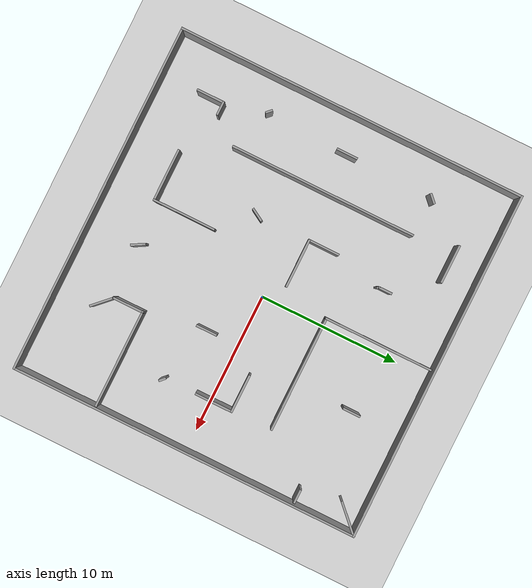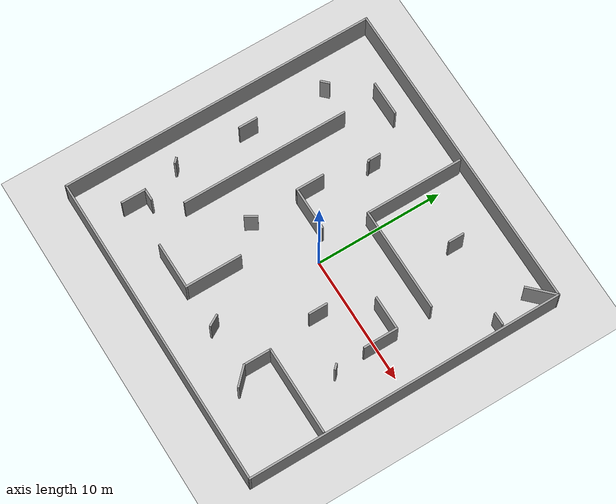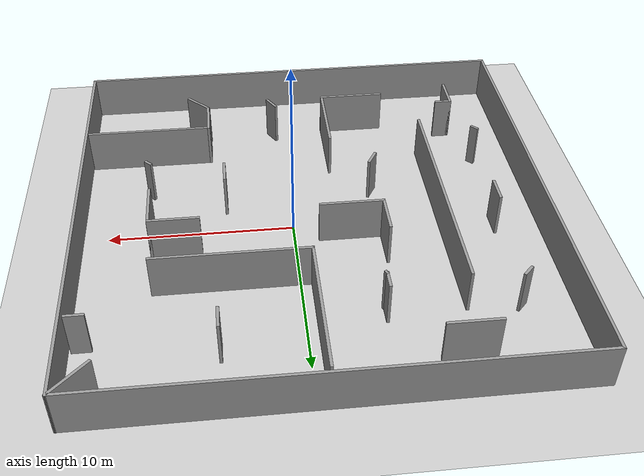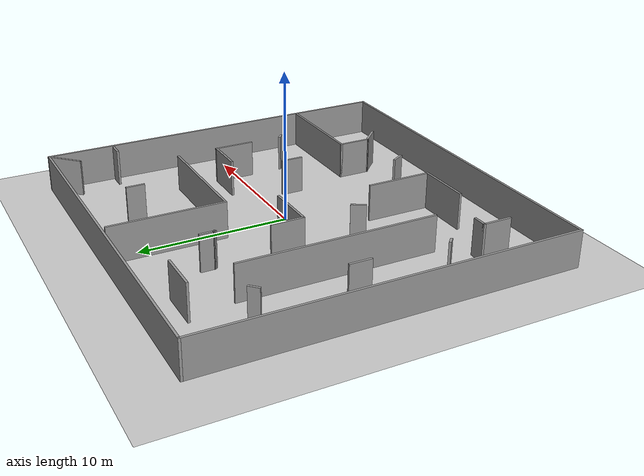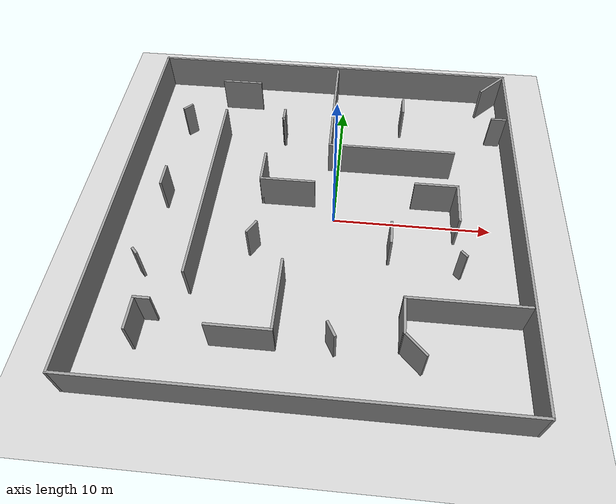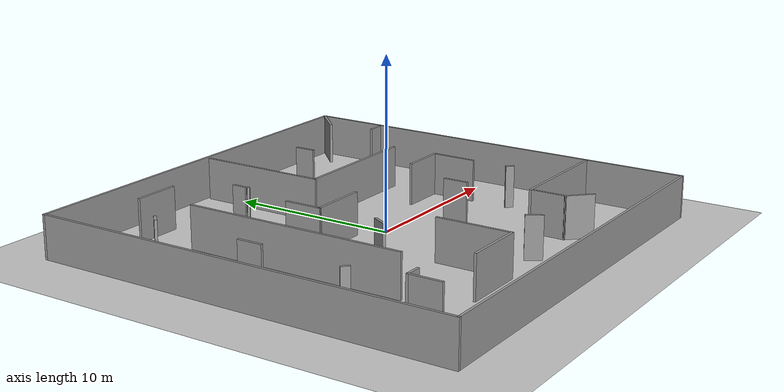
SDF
<sdf version="1.7">
 <world name="default">
  <light name="sun" type="directional">
   <pose>0 0 10 0 -0 0</pose>
   <diffuse>0.8 0.8 0.8 1</diffuse>
   <specular>0.2 0.2 0.2 1</specular>
   <attenuation>
    <range>1000</range>
    <constant>0.9</constant>
    <linear>0.01</linear>
    <quadratic>0.001</quadratic>
   </attenuation>
   <direction>-0.5 0.1 -0.9</direction>
   <spot><inner_angle>0</inner_angle><outer_angle>0</outer_angle><falloff>0</falloff></spot>
  </light>
  <model name="ground_plane">
   <static>1</static>
   <link name="link">
    <collision name="collision">
     <geometry><plane><normal>0 0 1</normal><size>100 100</size></plane></geometry>
     <surface>
      <contact><collide_bitmask>65535</collide_bitmask></contact>
      <friction><ode><mu>100</mu><mu2>50</mu2></ode></friction>
     </surface>
    </collision>
    <visual name="visual">
     <cast_shadows>0</cast_shadows>
     <geometry><plane><normal>0 0 1</normal><size>100 100</size></plane></geometry>
     <material>
      <script><uri>file://media/materials/scripts/gazebo.material</uri><name>Gazebo/Grey</name></script>
     </material>
    </visual>
   </link>
  </model>
  <gravity>0 0 -9.8</gravity>
  <magnetic_field>6e-06 2.3e-05 -4.2e-05</magnetic_field>
  <atmosphere type="adiabatic"/>
  <physics type="ode">
   <max_step_size>0.001</max_step_size>
   <real_time_factor>1</real_time_factor>
   <real_time_update_rate>1000</real_time_update_rate>
  </physics>
  <scene><ambient>0.4 0.4 0.4 1</ambient><background>0.7 0.7 0.7 1</background><shadows>1</shadows></scene>
  <spherical_coordinates>
   <surface_model>EARTH_WGS84</surface_model>
   <latitude_deg>0</latitude_deg>
   <longitude_deg>0</longitude_deg>
   <elevation>0</elevation>
   <heading_deg>0</heading_deg>
  </spherical_coordinates>
  <model name="Untitled">
   <pose>-1.01418 -0.082751 0 0 -0 0</pose>
   <link name="Wall_10">
    <collision name="Wall_10_Collision">
     <geometry><box><size>13.25 0.15 2.5</size></box></geometry>
     <pose>0 0 1.25 0 -0 0</pose>
    </collision>
    <visual name="Wall_10_Visual">
     <pose>0 0 1.25 0 -0 0</pose>
     <geometry><box><size>13.25 0.15 2.5</size></box></geometry>
     <material>
      <script><uri>file://media/materials/scripts/gazebo.material</uri><name>Gazebo/Grey</name></script>
      <ambient>1 1 1 1</ambient>
     </material>
     <meta><layer>0</layer></meta>
    </visual>
    <pose>-6.99696 0.555683 0 0 -0 -1.5708</pose>
   </link>
   <link name="Wall_12">
    <collision name="Wall_12_Collision">
     <geometry><box><size>7 0.15 2.5</size></box></geometry>
     <pose>0 0 1.25 0 -0 0</pose>
    </collision>
    <visual name="Wall_12_Visual">
     <pose>0 0 1.25 0 -0 0</pose>
     <geometry><box><size>7 0.15 2.5</size></box></geometry>
     <material>
      <script><uri>file://media/materials/scripts/gazebo.material</uri><name>Gazebo/Grey</name></script>
      <ambient>1 1 1 1</ambient>
     </material>
     <meta><layer>0</layer></meta>
    </visual>
    <pose>8.8034 -6.52582 0 0 -0 0</pose>
   </link>
   <link name="Wall_14">
    <collision name="Wall_14_Collision">
     <geometry><box><size>2.25 0.15 2.5</size></box></geometry>
     <pose>0 0 1.25 0 -0 0</pose>
    </collision>
    <visual name="Wall_14_Visual">
     <pose>0 0 1.25 0 -0 0</pose>
     <geometry><box><size>2.25 0.15 2.5</size></box></geometry>
     <material>
      <script><uri>file://media/materials/scripts/gazebo.material</uri><name>Gazebo/Grey</name></script>
      <ambient>1 1 1 1</ambient>
     </material>
     <meta><layer>0</layer></meta>
    </visual>
    <pose>5.3784 -7.57582 0 0 -0 -1.5708</pose>
   </link>
   <link name="Wall_16">
    <collision name="Wall_16_Collision">
     <geometry><box><size>7.75 0.15 2.5</size></box></geometry>
     <pose>0 0 1.25 0 -0 0</pose>
    </collision>
    <visual name="Wall_16_Visual">
     <pose>0 0 1.25 0 -0 0</pose>
     <geometry><box><size>7.75 0.15 2.5</size></box></geometry>
     <material>
      <script><uri>file://media/materials/scripts/gazebo.material</uri><name>Gazebo/Grey</name></script>
      <ambient>1 1 1 1</ambient>
     </material>
     <meta><layer>0</layer></meta>
    </visual>
    <pose>0.40034 8.28374 0 0 -0 -1.5708</pose>
   </link>
   <link name="Wall_17">
    <collision name="Wall_17_Collision">
     <geometry><box><size>8.25 0.15 2.5</size></box></geometry>
     <pose>0 0 1.25 0 -0 0</pose>
    </collision>
    <visual name="Wall_17_Visual">
     <pose>0 0 1.25 0 -0 0</pose>
     <geometry><box><size>8.25 0.15 2.5</size></box></geometry>
     <material>
      <script><uri>file://media/materials/scripts/gazebo.material</uri><name>Gazebo/Grey</name></script>
      <ambient>1 1 1 1</ambient>
     </material>
     <meta><layer>0</layer></meta>
    </visual>
    <pose>4.45034 4.48374 0 0 -0 0</pose>
   </link>
   <link name="Wall_19">
    <collision name="Wall_19_Collision">
     <geometry><box><size>2.75 0.15 2.5</size></box></geometry>
     <pose>0 0 1.25 0 -0 0</pose>
    </collision>
    <visual name="Wall_19_Visual">
     <pose>0 0 1.25 0 -0 0</pose>
     <geometry><box><size>2.75 0.15 2.5</size></box></geometry>
     <material>
      <script><uri>file://media/materials/scripts/gazebo.material</uri><name>Gazebo/Grey</name></script>
      <ambient>1 1 1 1</ambient>
     </material>
     <meta><layer>0</layer></meta>
    </visual>
    <pose>-6.39482 10.1763 0 0 -0 0</pose>
   </link>
   <link name="Wall_2">
    <collision name="Wall_2_Collision">
     <geometry><box><size>25 0.15 2.5</size></box></geometry>
     <pose>0 0 1.25 0 -0 0</pose>
    </collision>
    <visual name="Wall_2_Visual">
     <pose>0 0 1.25 0 -0 0</pose>
     <geometry><box><size>25 0.15 2.5</size></box></geometry>
     <material>
      <script><uri>file://media/materials/scripts/gazebo.material</uri><name>Gazebo/Grey</name></script>
      <ambient>1 1 1 1</ambient>
     </material>
     <meta><layer>0</layer></meta>
    </visual>
    <pose>-0.015532 12.4095 0 0 -0 0</pose>
   </link>
   <link name="Wall_21">
    <collision name="Wall_21_Collision">
     <geometry><box><size>4.5 0.15 2.5</size></box></geometry>
     <pose>0 0 1.25 0 -0 0</pose>
    </collision>
    <visual name="Wall_21_Visual">
     <pose>0 0 1.25 0 -0 0</pose>
     <geometry><box><size>4.5 0.15 2.5</size></box></geometry>
     <material>
      <script><uri>file://media/materials/scripts/gazebo.material</uri><name>Gazebo/Grey</name></script>
      <ambient>1 1 1 1</ambient>
     </material>
     <meta><layer>0</layer></meta>
    </visual>
    <pose>-1.55366 -6.93292 0 0 -0 -1.5708</pose>
   </link>
   <link name="Wall_22">
    <collision name="Wall_22_Collision">
     <geometry><box><size>3.75 0.15 2.5</size></box></geometry>
     <pose>0 0 1.25 0 -0 0</pose>
    </collision>
    <visual name="Wall_22_Visual">
     <pose>0 0 1.25 0 -0 0</pose>
     <geometry><box><size>3.75 0.15 2.5</size></box></geometry>
     <material>
      <script><uri>file://media/materials/scripts/gazebo.material</uri><name>Gazebo/Grey</name></script>
      <ambient>1 1 1 1</ambient>
     </material>
     <meta><layer>0</layer></meta>
    </visual>
    <pose>-3.35366 -9.10792 0 0 -0 3.14159</pose>
   </link>
   <link name="Wall_24">
    <collision name="Wall_24_Collision">
     <geometry><box><size>1.25 0.15 2.5</size></box></geometry>
     <pose>0 0 1.25 0 -0 0</pose>
    </collision>
    <visual name="Wall_24_Visual">
     <pose>0 0 1.25 0 -0 0</pose>
     <geometry><box><size>1.25 0.15 2.5</size></box></geometry>
     <material>
      <script><uri>file://media/materials/scripts/gazebo.material</uri><name>Gazebo/Grey</name></script>
      <ambient>1 1 1 1</ambient>
     </material>
     <meta><layer>0</layer></meta>
    </visual>
    <pose>5.1923 8.69578 0 0 -0 -1.5708</pose>
   </link>
   <link name="Wall_26">
    <collision name="Wall_26_Collision">
     <geometry><box><size>2.25 0.15 2.5</size></box></geometry>
     <pose>0 0 1.25 0 -0 0</pose>
    </collision>
    <visual name="Wall_26_Visual">
     <pose>0 0 1.25 0 -0 0</pose>
     <geometry><box><size>2.25 0.15 2.5</size></box></geometry>
     <material>
      <script><uri>file://media/materials/scripts/gazebo.material</uri><name>Gazebo/Grey</name></script>
      <ambient>1 1 1 1</ambient>
     </material>
     <meta><layer>0</layer></meta>
    </visual>
    <pose>-3.69376 2.24072 0 0 -0 -1.5708</pose>
   </link>
   <link name="Wall_27">
    <collision name="Wall_27_Collision">
     <geometry><box><size>3.5 0.15 2.5</size></box></geometry>
     <pose>0 0 1.25 0 -0 0</pose>
    </collision>
    <visual name="Wall_27_Visual">
     <pose>0 0 1.25 0 -0 0</pose>
     <geometry><box><size>3.5 0.15 2.5</size></box></geometry>
     <material>
      <script><uri>file://media/materials/scripts/gazebo.material</uri><name>Gazebo/Grey</name></script>
      <ambient>1 1 1 1</ambient>
     </material>
     <meta><layer>0</layer></meta>
    </visual>
    <pose>-2.01876 1.19072 0 0 -0 0</pose>
   </link>
   <link name="Wall_29">
    <collision name="Wall_29_Collision">
     <geometry><box><size>1.5 0.15 2.5</size></box></geometry>
     <pose>0 0 1.25 0 -0 0</pose>
    </collision>
    <visual name="Wall_29_Visual">
     <pose>0 0 1.25 0 -0 0</pose>
     <geometry><box><size>1.5 0.15 2.5</size></box></geometry>
     <material>
      <script><uri>file://media/materials/scripts/gazebo.material</uri><name>Gazebo/Grey</name></script>
      <ambient>1 1 1 1</ambient>
     </material>
     <meta><layer>0</layer></meta>
    </visual>
    <pose>4.58749 -2.22276 0 0 -0 -1.5708</pose>
   </link>
   <link name="Wall_31">
    <collision name="Wall_31_Collision">
     <geometry><box><size>2.75 0.15 2.5</size></box></geometry>
     <pose>0 0 1.25 0 -0 0</pose>
    </collision>
    <visual name="Wall_31_Visual">
     <pose>0 0 1.25 0 -0 0</pose>
     <geometry><box><size>2.75 0.15 2.5</size></box></geometry>
     <material>
      <script><uri>file://media/materials/scripts/gazebo.material</uri><name>Gazebo/Grey</name></script>
      <ambient>1 1 1 1</ambient>
     </material>
     <meta><layer>0</layer></meta>
    </visual>
    <pose>7.32973 1.61586 0 0 -0 0</pose>
   </link>
   <link name="Wall_32">
    <collision name="Wall_32_Collision">
     <geometry><box><size>2.75 0.15 2.5</size></box></geometry>
     <pose>0 0 1.25 0 -0 0</pose>
    </collision>
    <visual name="Wall_32_Visual">
     <pose>0 0 1.25 0 -0 0</pose>
     <geometry><box><size>2.75 0.15 2.5</size></box></geometry>
     <material>
      <script><uri>file://media/materials/scripts/gazebo.material</uri><name>Gazebo/Grey</name></script>
      <ambient>1 1 1 1</ambient>
     </material>
     <meta><layer>0</layer></meta>
    </visual>
    <pose>8.62973 0.315861 0 0 -0 -1.5708</pose>
   </link>
   <link name="Wall_34">
    <collision name="Wall_34_Collision">
     <geometry><box><size>1 0.15 2.5</size></box></geometry>
     <pose>0 0 1.25 0 -0 0</pose>
    </collision>
    <visual name="Wall_34_Visual">
     <pose>0 0 1.25 0 -0 0</pose>
     <geometry><box><size>1 0.15 2.5</size></box></geometry>
     <material>
      <script><uri>file://media/materials/scripts/gazebo.material</uri><name>Gazebo/Grey</name></script>
      <ambient>1 1 1 1</ambient>
     </material>
     <meta><layer>0</layer></meta>
    </visual>
    <pose>-8.8642 -7.87502 0 0 -0 3.14159</pose>
   </link>
   <link name="Wall_35">
    <collision name="Wall_35_Collision">
     <geometry><box><size>2 0.15 2.5</size></box></geometry>
     <pose>0 0 1.25 0 -0 0</pose>
    </collision>
    <visual name="Wall_35_Visual">
     <pose>0 0 1.25 0 -0 0</pose>
     <geometry><box><size>2 0.15 2.5</size></box></geometry>
     <material>
      <script><uri>file://media/materials/scripts/gazebo.material</uri><name>Gazebo/Grey</name></script>
      <ambient>1 1 1 1</ambient>
     </material>
     <meta><layer>0</layer></meta>
    </visual>
    <pose>-9.2892 -8.80002 0 0 -0 -1.5708</pose>
   </link>
   <link name="Wall_37">
    <collision name="Wall_37_Collision">
     <geometry><box><size>1 0.15 2.5</size></box></geometry>
     <pose>0 0 1.25 0 -0 0</pose>
    </collision>
    <visual name="Wall_37_Visual">
     <pose>0 0 1.25 0 -0 0</pose>
     <geometry><box><size>1 0.15 2.5</size></box></geometry>
     <material>
      <script><uri>file://media/materials/scripts/gazebo.material</uri><name>Gazebo/Grey</name></script>
      <ambient>1 1 1 1</ambient>
     </material>
     <meta><layer>0</layer></meta>
    </visual>
    <pose>-2.94938 7.0994 0 0 -0 -1.5708</pose>
   </link>
   <link name="Wall_38">
    <collision name="Wall_38_Collision">
     <geometry><box><size>0.25 0.15 2.5</size></box></geometry>
     <pose>0 0 1.25 0 -0 0</pose>
    </collision>
    <visual name="Wall_38_Visual">
     <pose>0 0 1.25 0 -0 0</pose>
     <geometry><box><size>0.25 0.15 2.5</size></box></geometry>
     <material>
      <script><uri>file://media/materials/scripts/gazebo.material</uri><name>Gazebo/Grey</name></script>
      <ambient>1 1 1 1</ambient>
     </material>
     <meta><layer>0</layer></meta>
    </visual>
    <pose>-2.92438 6.6311 0 0 -0 -1.0472</pose>
   </link>
   <link name="Wall_4">
    <collision name="Wall_4_Collision">
     <geometry><box><size>25 0.15 2.5</size></box></geometry>
     <pose>0 0 1.25 0 -0 0</pose>
    </collision>
    <visual name="Wall_4_Visual">
     <pose>0 0 1.25 0 -0 0</pose>
     <geometry><box><size>25 0.15 2.5</size></box></geometry>
     <material>
      <script><uri>file://media/materials/scripts/gazebo.material</uri><name>Gazebo/Grey</name></script>
      <ambient>1 1 1 1</ambient>
     </material>
     <meta><layer>0</layer></meta>
    </visual>
    <pose>-12.4405 -0.015532 0 0 -0 -1.5708</pose>
   </link>
   <link name="Wall_40">
    <collision name="Wall_40_Collision">
     <geometry><box><size>1.5 0.15 2.5</size></box></geometry>
     <pose>0 0 1.25 0 -0 0</pose>
    </collision>
    <visual name="Wall_40_Visual">
     <pose>0 0 1.25 0 -0 0</pose>
     <geometry><box><size>1.5 0.15 2.5</size></box></geometry>
     <material>
      <script><uri>file://media/materials/scripts/gazebo.material</uri><name>Gazebo/Grey</name></script>
      <ambient>1 1 1 1</ambient>
     </material>
     <meta><layer>0</layer></meta>
    </visual>
    <pose>-9.88144 0.894337 0 0 -0 -1.5708</pose>
   </link>
   <link name="Wall_42">
    <collision name="Wall_42_Collision">
     <geometry><box><size>1 0.15 2.5</size></box></geometry>
     <pose>0 0 1.25 0 -0 0</pose>
    </collision>
    <visual name="Wall_42_Visual">
     <pose>0 0 1.25 0 -0 0</pose>
     <geometry><box><size>1 0.15 2.5</size></box></geometry>
     <material>
      <script><uri>file://media/materials/scripts/gazebo.material</uri><name>Gazebo/Grey</name></script>
      <ambient>1 1 1 1</ambient>
     </material>
     <meta><layer>0</layer></meta>
    </visual>
    <pose>-3.67365 -2.61368 0 0 -0 -2.0944</pose>
   </link>
   <link name="Wall_44">
    <collision name="Wall_44_Collision">
     <geometry><box><size>1 0.15 2.5</size></box></geometry>
     <pose>0 0 1.25 0 -0 0</pose>
    </collision>
    <visual name="Wall_44_Visual">
     <pose>0 0 1.25 0 -0 0</pose>
     <geometry><box><size>1 0.15 2.5</size></box></geometry>
     <material>
      <script><uri>file://media/materials/scripts/gazebo.material</uri><name>Gazebo/Grey</name></script>
      <ambient>1 1 1 1</ambient>
     </material>
     <meta><layer>0</layer></meta>
    </visual>
    <pose>1.54332 -8.75484 0 0 -0 -1.0472</pose>
   </link>
   <link name="Wall_46">
    <collision name="Wall_46_Collision">
     <geometry><box><size>0.5 0.15 2.5</size></box></geometry>
     <pose>0 0 1.25 0 -0 0</pose>
    </collision>
    <visual name="Wall_46_Visual">
     <pose>0 0 1.25 0 -0 0</pose>
     <geometry><box><size>0.5 0.15 2.5</size></box></geometry>
     <material>
      <script><uri>file://media/materials/scripts/gazebo.material</uri><name>Gazebo/Grey</name></script>
      <ambient>1 1 1 1</ambient>
     </material>
     <meta><layer>0</layer></meta>
    </visual>
    <pose>8.75882 -3.39289 0 0 -0 -0.785398</pose>
   </link>
   <link name="Wall_48">
    <collision name="Wall_48_Collision">
     <geometry><box><size>0.75 0.15 2.5</size></box></geometry>
     <pose>0 0 1.25 0 -0 0</pose>
    </collision>
    <visual name="Wall_48_Visual">
     <pose>0 0 1.25 0 -0 0</pose>
     <geometry><box><size>0.75 0.15 2.5</size></box></geometry>
     <material>
      <script><uri>file://media/materials/scripts/gazebo.material</uri><name>Gazebo/Grey</name></script>
      <ambient>1 1 1 1</ambient>
     </material>
     <meta><layer>0</layer></meta>
    </visual>
    <pose>-9.72138 7.21922 0 0 -0 -2.35619</pose>
   </link>
   <link name="Wall_50">
    <collision name="Wall_50_Collision">
     <geometry><box><size>0.5 0.15 2.5</size></box></geometry>
     <pose>0 0 1.25 0 -0 0</pose>
    </collision>
    <visual name="Wall_50_Visual">
     <pose>0 0 1.25 0 -0 0</pose>
     <geometry><box><size>0.5 0.15 2.5</size></box></geometry>
     <material>
      <script><uri>file://media/materials/scripts/gazebo.material</uri><name>Gazebo/Grey</name></script>
      <ambient>1 1 1 1</ambient>
     </material>
     <meta><layer>0</layer></meta>
    </visual>
    <pose>-10.0834 -4.92818 0 0 -0 -0.785398</pose>
   </link>
   <link name="Wall_52">
    <collision name="Wall_52_Collision">
     <geometry><box><size>2.5 0.15 2.5</size></box></geometry>
     <pose>0 0 1.25 0 -0 0</pose>
    </collision>
    <visual name="Wall_52_Visual">
     <pose>0 0 1.25 0 -0 0</pose>
     <geometry><box><size>2.5 0.15 2.5</size></box></geometry>
     <material>
      <script><uri>file://media/materials/scripts/gazebo.material</uri><name>Gazebo/Grey</name></script>
      <ambient>1 1 1 1</ambient>
     </material>
     <meta><layer>0</layer></meta>
    </visual>
    <pose>11.5786 11.5786 0 0 -0 -2.35619</pose>
   </link>
   <link name="Wall_54">
    <collision name="Wall_54_Collision">
     <geometry><box><size>1 0.15 2.5</size></box></geometry>
     <pose>0 0 1.25 0 -0 0</pose>
    </collision>
    <visual name="Wall_54_Visual">
     <pose>0 0 1.25 0 -0 0</pose>
     <geometry><box><size>1 0.15 2.5</size></box></geometry>
     <material>
      <script><uri>file://media/materials/scripts/gazebo.material</uri><name>Gazebo/Grey</name></script>
      <ambient>1 1 1 1</ambient>
     </material>
     <meta><layer>0</layer></meta>
    </visual>
    <pose>11.7119 7.94311 0 0 -0 0</pose>
   </link>
   <link name="Wall_56">
    <collision name="Wall_56_Collision">
     <geometry><box><size>1.75 0.15 2.5</size></box></geometry>
     <pose>0 0 1.25 0 -0 0</pose>
    </collision>
    <visual name="Wall_56_Visual">
     <pose>0 0 1.25 0 -0 0</pose>
     <geometry><box><size>1.75 0.15 2.5</size></box></geometry>
     <material>
      <script><uri>file://media/materials/scripts/gazebo.material</uri><name>Gazebo/Grey</name></script>
      <ambient>1 1 1 1</ambient>
     </material>
     <meta><layer>0</layer></meta>
    </visual>
    <pose>5.94409 -9.19151 0 0 -0 -0.785398</pose>
   </link>
   <link name="Wall_6">
    <collision name="Wall_6_Collision">
     <geometry><box><size>25 0.15 2.5</size></box></geometry>
     <pose>0 0 1.25 0 -0 0</pose>
    </collision>
    <visual name="Wall_6_Visual">
     <pose>0 0 1.25 0 -0 0</pose>
     <geometry><box><size>25 0.15 2.5</size></box></geometry>
     <material>
      <script><uri>file://media/materials/scripts/gazebo.material</uri><name>Gazebo/Grey</name></script>
      <ambient>1 1 1 1</ambient>
     </material>
     <meta><layer>0</layer></meta>
    </visual>
    <pose>-0.015532 -12.4405 0 0 -0 0</pose>
   </link>
   <link name="Wall_8">
    <collision name="Wall_8_Collision">
     <geometry><box><size>25 0.15 2.5</size></box></geometry>
     <pose>0 0 1.25 0 -0 0</pose>
    </collision>
    <visual name="Wall_8_Visual">
     <pose>0 0 1.25 0 -0 0</pose>
     <geometry><box><size>25 0.15 2.5</size></box></geometry>
     <material>
      <script><uri>file://media/materials/scripts/gazebo.material</uri><name>Gazebo/Grey</name></script>
      <ambient>1 1 1 1</ambient>
     </material>
     <meta><layer>0</layer></meta>
    </visual>
    <pose>12.4095 -0.015532 0 0 -0 -1.5708</pose>
   </link>
   <static>1</static>
  </model>
 </world>
</sdf>
